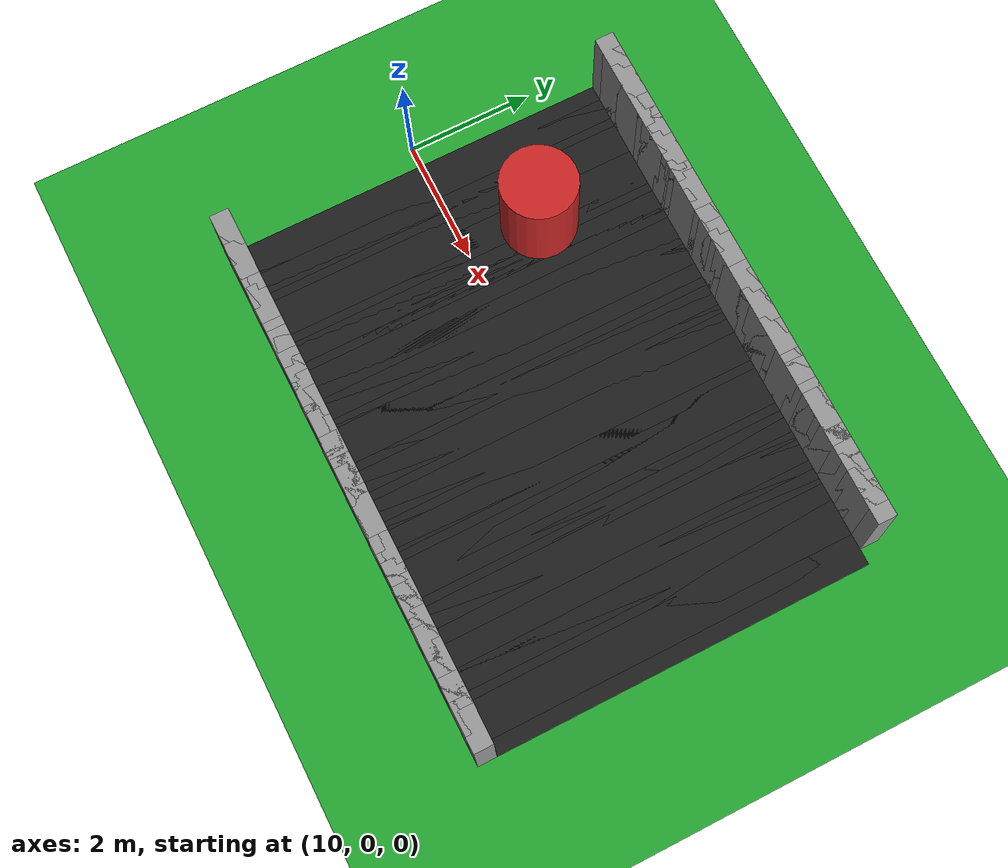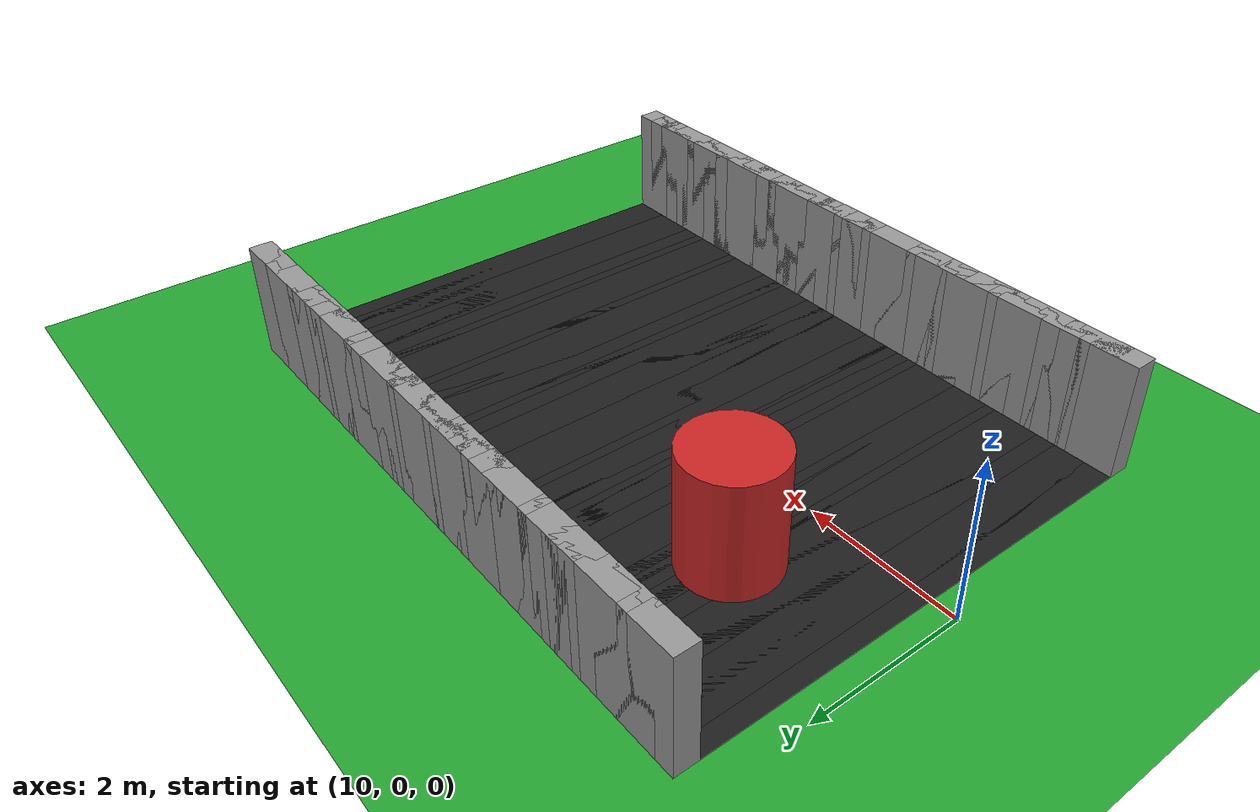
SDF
<sdf version="1.6">
 <world name="obstacle_asymturn">
  <include><uri>model://sun</uri></include>
  <model name="ground_plane">
   <static>true</static>
   <link name="link">
    <collision name="collision">
     <surface><friction><ode><mu>100</mu><mu2>50</mu2></ode></friction></surface>
     <geometry><plane><normal>0 0 1</normal><size>120 120</size></plane></geometry>
    </collision>
    <visual name="visual">
     <geometry><plane><normal>0 0 1</normal><size>120 120</size></plane></geometry>
     <material>
      <script><uri>file://media/materials/scripts/gazebo.material</uri><name>Gazebo/Green</name></script>
     </material>
    </visual>
   </link>
  </model>
  <model name="asphalt_42">
   <static>true</static>
   <pose>10.625 0.000 0.005 0 0 0.00000</pose>
   <link name="link">
    <visual name="visual">
     <geometry><box><size>0.610 6.000 0.010</size></box></geometry>
     <material>
      <script><uri>file://media/materials/scripts/gazebo.material</uri><name>Gazebo/Black</name></script>
     </material>
    </visual>
   </link>
  </model>
  <model name="curbL_42">
   <static>true</static>
   <pose>10.625 3.150 0.750 0 0 0.00000</pose>
   <link name="link">
    <collision name="collision"><geometry><box><size>0.610 0.300 1.500</size></box></geometry></collision>
    <visual name="visual">
     <geometry><box><size>0.610 0.300 1.500</size></box></geometry>
     <material>
      <script><uri>file://media/materials/scripts/gazebo.material</uri><name>Gazebo/Grey</name></script>
     </material>
    </visual>
   </link>
  </model>
  <model name="curbR_42">
   <static>true</static>
   <pose>10.625 -3.150 0.750 0 0 0.00000</pose>
   <link name="link">
    <collision name="collision"><geometry><box><size>0.610 0.300 1.500</size></box></geometry></collision>
    <visual name="visual">
     <geometry><box><size>0.610 0.300 1.500</size></box></geometry>
     <material>
      <script><uri>file://media/materials/scripts/gazebo.material</uri><name>Gazebo/Grey</name></script>
     </material>
    </visual>
   </link>
  </model>
  <model name="asphalt_43">
   <static>true</static>
   <pose>10.875 0.000 0.005 0 0 0.00000</pose>
   <link name="link">
    <visual name="visual">
     <geometry><box><size>0.610 6.000 0.010</size></box></geometry>
     <material>
      <script><uri>file://media/materials/scripts/gazebo.material</uri><name>Gazebo/Black</name></script>
     </material>
    </visual>
   </link>
  </model>
  <model name="curbL_43">
   <static>true</static>
   <pose>10.875 3.150 0.750 0 0 0.00000</pose>
   <link name="link">
    <collision name="collision"><geometry><box><size>0.610 0.300 1.500</size></box></geometry></collision>
    <visual name="visual">
     <geometry><box><size>0.610 0.300 1.500</size></box></geometry>
     <material>
      <script><uri>file://media/materials/scripts/gazebo.material</uri><name>Gazebo/Grey</name></script>
     </material>
    </visual>
   </link>
  </model>
  <model name="curbR_43">
   <static>true</static>
   <pose>10.875 -3.150 0.750 0 0 0.00000</pose>
   <link name="link">
    <collision name="collision"><geometry><box><size>0.610 0.300 1.500</size></box></geometry></collision>
    <visual name="visual">
     <geometry><box><size>0.610 0.300 1.500</size></box></geometry>
     <material>
      <script><uri>file://media/materials/scripts/gazebo.material</uri><name>Gazebo/Grey</name></script>
     </material>
    </visual>
   </link>
  </model>
  <model name="asphalt_44">
   <static>true</static>
   <pose>11.125 0.000 0.005 0 0 0.00000</pose>
   <link name="link">
    <visual name="visual">
     <geometry><box><size>0.610 6.000 0.010</size></box></geometry>
     <material>
      <script><uri>file://media/materials/scripts/gazebo.material</uri><name>Gazebo/Black</name></script>
     </material>
    </visual>
   </link>
  </model>
  <model name="curbL_44">
   <static>true</static>
   <pose>11.125 3.150 0.750 0 0 0.00000</pose>
   <link name="link">
    <collision name="collision"><geometry><box><size>0.610 0.300 1.500</size></box></geometry></collision>
    <visual name="visual">
     <geometry><box><size>0.610 0.300 1.500</size></box></geometry>
     <material>
      <script><uri>file://media/materials/scripts/gazebo.material</uri><name>Gazebo/Grey</name></script>
     </material>
    </visual>
   </link>
  </model>
  <model name="curbR_44">
   <static>true</static>
   <pose>11.125 -3.150 0.750 0 0 0.00000</pose>
   <link name="link">
    <collision name="collision"><geometry><box><size>0.610 0.300 1.500</size></box></geometry></collision>
    <visual name="visual">
     <geometry><box><size>0.610 0.300 1.500</size></box></geometry>
     <material>
      <script><uri>file://media/materials/scripts/gazebo.material</uri><name>Gazebo/Grey</name></script>
     </material>
    </visual>
   </link>
  </model>
  <model name="asphalt_45">
   <static>true</static>
   <pose>11.375 0.000 0.005 0 0 0.00000</pose>
   <link name="link">
    <visual name="visual">
     <geometry><box><size>0.610 6.000 0.010</size></box></geometry>
     <material>
      <script><uri>file://media/materials/scripts/gazebo.material</uri><name>Gazebo/Black</name></script>
     </material>
    </visual>
   </link>
  </model>
  <model name="curbL_45">
   <static>true</static>
   <pose>11.375 3.150 0.750 0 0 0.00000</pose>
   <link name="link">
    <collision name="collision"><geometry><box><size>0.610 0.300 1.500</size></box></geometry></collision>
    <visual name="visual">
     <geometry><box><size>0.610 0.300 1.500</size></box></geometry>
     <material>
      <script><uri>file://media/materials/scripts/gazebo.material</uri><name>Gazebo/Grey</name></script>
     </material>
    </visual>
   </link>
  </model>
  <model name="curbR_45">
   <static>true</static>
   <pose>11.375 -3.150 0.750 0 0 0.00000</pose>
   <link name="link">
    <collision name="collision"><geometry><box><size>0.610 0.300 1.500</size></box></geometry></collision>
    <visual name="visual">
     <geometry><box><size>0.610 0.300 1.500</size></box></geometry>
     <material>
      <script><uri>file://media/materials/scripts/gazebo.material</uri><name>Gazebo/Grey</name></script>
     </material>
    </visual>
   </link>
  </model>
  <model name="asphalt_46">
   <static>true</static>
   <pose>11.625 0.000 0.005 0 0 0.00000</pose>
   <link name="link">
    <visual name="visual">
     <geometry><box><size>0.610 6.000 0.010</size></box></geometry>
     <material>
      <script><uri>file://media/materials/scripts/gazebo.material</uri><name>Gazebo/Black</name></script>
     </material>
    </visual>
   </link>
  </model>
  <model name="curbL_46">
   <static>true</static>
   <pose>11.625 3.150 0.750 0 0 0.00000</pose>
   <link name="link">
    <collision name="collision"><geometry><box><size>0.610 0.300 1.500</size></box></geometry></collision>
    <visual name="visual">
     <geometry><box><size>0.610 0.300 1.500</size></box></geometry>
     <material>
      <script><uri>file://media/materials/scripts/gazebo.material</uri><name>Gazebo/Grey</name></script>
     </material>
    </visual>
   </link>
  </model>
  <model name="curbR_46">
   <static>true</static>
   <pose>11.625 -3.150 0.750 0 0 0.00000</pose>
   <link name="link">
    <collision name="collision"><geometry><box><size>0.610 0.300 1.500</size></box></geometry></collision>
    <visual name="visual">
     <geometry><box><size>0.610 0.300 1.500</size></box></geometry>
     <material>
      <script><uri>file://media/materials/scripts/gazebo.material</uri><name>Gazebo/Grey</name></script>
     </material>
    </visual>
   </link>
  </model>
  <model name="asphalt_47">
   <static>true</static>
   <pose>11.875 0.000 0.005 0 0 0.00000</pose>
   <link name="link">
    <visual name="visual">
     <geometry><box><size>0.610 6.000 0.010</size></box></geometry>
     <material>
      <script><uri>file://media/materials/scripts/gazebo.material</uri><name>Gazebo/Black</name></script>
     </material>
    </visual>
   </link>
  </model>
  <model name="curbL_47">
   <static>true</static>
   <pose>11.875 3.150 0.750 0 0 0.00000</pose>
   <link name="link">
    <collision name="collision"><geometry><box><size>0.610 0.300 1.500</size></box></geometry></collision>
    <visual name="visual">
     <geometry><box><size>0.610 0.300 1.500</size></box></geometry>
     <material>
      <script><uri>file://media/materials/scripts/gazebo.material</uri><name>Gazebo/Grey</name></script>
     </material>
    </visual>
   </link>
  </model>
  <model name="curbR_47">
   <static>true</static>
   <pose>11.875 -3.150 0.750 0 0 0.00000</pose>
   <link name="link">
    <collision name="collision"><geometry><box><size>0.610 0.300 1.500</size></box></geometry></collision>
    <visual name="visual">
     <geometry><box><size>0.610 0.300 1.500</size></box></geometry>
     <material>
      <script><uri>file://media/materials/scripts/gazebo.material</uri><name>Gazebo/Grey</name></script>
     </material>
    </visual>
   </link>
  </model>
  <model name="asphalt_48">
   <static>true</static>
   <pose>12.125 0.000 0.005 0 0 0.00000</pose>
   <link name="link">
    <visual name="visual">
     <geometry><box><size>0.610 6.000 0.010</size></box></geometry>
     <material>
      <script><uri>file://media/materials/scripts/gazebo.material</uri><name>Gazebo/Black</name></script>
     </material>
    </visual>
   </link>
  </model>
  <model name="curbL_48">
   <static>true</static>
   <pose>12.125 3.150 0.750 0 0 0.00000</pose>
   <link name="link">
    <collision name="collision"><geometry><box><size>0.610 0.300 1.500</size></box></geometry></collision>
    <visual name="visual">
     <geometry><box><size>0.610 0.300 1.500</size></box></geometry>
     <material>
      <script><uri>file://media/materials/scripts/gazebo.material</uri><name>Gazebo/Grey</name></script>
     </material>
    </visual>
   </link>
  </model>
  <model name="curbR_48">
   <static>true</static>
   <pose>12.125 -3.150 0.750 0 0 0.00000</pose>
   <link name="link">
    <collision name="collision"><geometry><box><size>0.610 0.300 1.500</size></box></geometry></collision>
    <visual name="visual">
     <geometry><box><size>0.610 0.300 1.500</size></box></geometry>
     <material>
      <script><uri>file://media/materials/scripts/gazebo.material</uri><name>Gazebo/Grey</name></script>
     </material>
    </visual>
   </link>
  </model>
  <model name="asphalt_49">
   <static>true</static>
   <pose>12.375 0.000 0.005 0 0 0.00000</pose>
   <link name="link">
    <visual name="visual">
     <geometry><box><size>0.610 6.000 0.010</size></box></geometry>
     <material>
      <script><uri>file://media/materials/scripts/gazebo.material</uri><name>Gazebo/Black</name></script>
     </material>
    </visual>
   </link>
  </model>
  <model name="curbL_49">
   <static>true</static>
   <pose>12.375 3.150 0.750 0 0 0.00000</pose>
   <link name="link">
    <collision name="collision"><geometry><box><size>0.610 0.300 1.500</size></box></geometry></collision>
    <visual name="visual">
     <geometry><box><size>0.610 0.300 1.500</size></box></geometry>
     <material>
      <script><uri>file://media/materials/scripts/gazebo.material</uri><name>Gazebo/Grey</name></script>
     </material>
    </visual>
   </link>
  </model>
  <model name="curbR_49">
   <static>true</static>
   <pose>12.375 -3.150 0.750 0 0 0.00000</pose>
   <link name="link">
    <collision name="collision"><geometry><box><size>0.610 0.300 1.500</size></box></geometry></collision>
    <visual name="visual">
     <geometry><box><size>0.610 0.300 1.500</size></box></geometry>
     <material>
      <script><uri>file://media/materials/scripts/gazebo.material</uri><name>Gazebo/Grey</name></script>
     </material>
    </visual>
   </link>
  </model>
  <model name="asphalt_50">
   <static>true</static>
   <pose>12.625 0.000 0.005 0 0 0.00000</pose>
   <link name="link">
    <visual name="visual">
     <geometry><box><size>0.610 6.000 0.010</size></box></geometry>
     <material>
      <script><uri>file://media/materials/scripts/gazebo.material</uri><name>Gazebo/Black</name></script>
     </material>
    </visual>
   </link>
  </model>
  <model name="curbL_50">
   <static>true</static>
   <pose>12.625 3.150 0.750 0 0 0.00000</pose>
   <link name="link">
    <collision name="collision"><geometry><box><size>0.610 0.300 1.500</size></box></geometry></collision>
    <visual name="visual">
     <geometry><box><size>0.610 0.300 1.500</size></box></geometry>
     <material>
      <script><uri>file://media/materials/scripts/gazebo.material</uri><name>Gazebo/Grey</name></script>
     </material>
    </visual>
   </link>
  </model>
  <model name="curbR_50">
   <static>true</static>
   <pose>12.625 -3.150 0.750 0 0 0.00000</pose>
   <link name="link">
    <collision name="collision"><geometry><box><size>0.610 0.300 1.500</size></box></geometry></collision>
    <visual name="visual">
     <geometry><box><size>0.610 0.300 1.500</size></box></geometry>
     <material>
      <script><uri>file://media/materials/scripts/gazebo.material</uri><name>Gazebo/Grey</name></script>
     </material>
    </visual>
   </link>
  </model>
  <model name="asphalt_51">
   <static>true</static>
   <pose>12.875 0.000 0.005 0 0 0.00000</pose>
   <link name="link">
    <visual name="visual">
     <geometry><box><size>0.610 6.000 0.010</size></box></geometry>
     <material>
      <script><uri>file://media/materials/scripts/gazebo.material</uri><name>Gazebo/Black</name></script>
     </material>
    </visual>
   </link>
  </model>
  <model name="curbL_51">
   <static>true</static>
   <pose>12.875 3.150 0.750 0 0 0.00000</pose>
   <link name="link">
    <collision name="collision"><geometry><box><size>0.610 0.300 1.500</size></box></geometry></collision>
    <visual name="visual">
     <geometry><box><size>0.610 0.300 1.500</size></box></geometry>
     <material>
      <script><uri>file://media/materials/scripts/gazebo.material</uri><name>Gazebo/Grey</name></script>
     </material>
    </visual>
   </link>
  </model>
  <model name="curbR_51">
   <static>true</static>
   <pose>12.875 -3.150 0.750 0 0 0.00000</pose>
   <link name="link">
    <collision name="collision"><geometry><box><size>0.610 0.300 1.500</size></box></geometry></collision>
    <visual name="visual">
     <geometry><box><size>0.610 0.300 1.500</size></box></geometry>
     <material>
      <script><uri>file://media/materials/scripts/gazebo.material</uri><name>Gazebo/Grey</name></script>
     </material>
    </visual>
   </link>
  </model>
  <model name="asphalt_52">
   <static>true</static>
   <pose>13.125 0.000 0.005 0 0 0.00000</pose>
   <link name="link">
    <visual name="visual">
     <geometry><box><size>0.610 6.000 0.010</size></box></geometry>
     <material>
      <script><uri>file://media/materials/scripts/gazebo.material</uri><name>Gazebo/Black</name></script>
     </material>
    </visual>
   </link>
  </model>
  <model name="curbL_52">
   <static>true</static>
   <pose>13.125 3.150 0.750 0 0 0.00000</pose>
   <link name="link">
    <collision name="collision"><geometry><box><size>0.610 0.300 1.500</size></box></geometry></collision>
    <visual name="visual">
     <geometry><box><size>0.610 0.300 1.500</size></box></geometry>
     <material>
      <script><uri>file://media/materials/scripts/gazebo.material</uri><name>Gazebo/Grey</name></script>
     </material>
    </visual>
   </link>
  </model>
  <model name="curbR_52">
   <static>true</static>
   <pose>13.125 -3.150 0.750 0 0 0.00000</pose>
   <link name="link">
    <collision name="collision"><geometry><box><size>0.610 0.300 1.500</size></box></geometry></collision>
    <visual name="visual">
     <geometry><box><size>0.610 0.300 1.500</size></box></geometry>
     <material>
      <script><uri>file://media/materials/scripts/gazebo.material</uri><name>Gazebo/Grey</name></script>
     </material>
    </visual>
   </link>
  </model>
  <model name="asphalt_53">
   <static>true</static>
   <pose>13.375 0.000 0.005 0 0 0.00000</pose>
   <link name="link">
    <visual name="visual">
     <geometry><box><size>0.610 6.000 0.010</size></box></geometry>
     <material>
      <script><uri>file://media/materials/scripts/gazebo.material</uri><name>Gazebo/Black</name></script>
     </material>
    </visual>
   </link>
  </model>
  <model name="curbL_53">
   <static>true</static>
   <pose>13.375 3.150 0.750 0 0 0.00000</pose>
   <link name="link">
    <collision name="collision"><geometry><box><size>0.610 0.300 1.500</size></box></geometry></collision>
    <visual name="visual">
     <geometry><box><size>0.610 0.300 1.500</size></box></geometry>
     <material>
      <script><uri>file://media/materials/scripts/gazebo.material</uri><name>Gazebo/Grey</name></script>
     </material>
    </visual>
   </link>
  </model>
  <model name="curbR_53">
   <static>true</static>
   <pose>13.375 -3.150 0.750 0 0 0.00000</pose>
   <link name="link">
    <collision name="collision"><geometry><box><size>0.610 0.300 1.500</size></box></geometry></collision>
    <visual name="visual">
     <geometry><box><size>0.610 0.300 1.500</size></box></geometry>
     <material>
      <script><uri>file://media/materials/scripts/gazebo.material</uri><name>Gazebo/Grey</name></script>
     </material>
    </visual>
   </link>
  </model>
  <model name="asphalt_54">
   <static>true</static>
   <pose>13.625 0.000 0.005 0 0 0.00000</pose>
   <link name="link">
    <visual name="visual">
     <geometry><box><size>0.610 6.000 0.010</size></box></geometry>
     <material>
      <script><uri>file://media/materials/scripts/gazebo.material</uri><name>Gazebo/Black</name></script>
     </material>
    </visual>
   </link>
  </model>
  <model name="curbL_54">
   <static>true</static>
   <pose>13.625 3.150 0.750 0 0 0.00000</pose>
   <link name="link">
    <collision name="collision"><geometry><box><size>0.610 0.300 1.500</size></box></geometry></collision>
    <visual name="visual">
     <geometry><box><size>0.610 0.300 1.500</size></box></geometry>
     <material>
      <script><uri>file://media/materials/scripts/gazebo.material</uri><name>Gazebo/Grey</name></script>
     </material>
    </visual>
   </link>
  </model>
  <model name="curbR_54">
   <static>true</static>
   <pose>13.625 -3.150 0.750 0 0 0.00000</pose>
   <link name="link">
    <collision name="collision"><geometry><box><size>0.610 0.300 1.500</size></box></geometry></collision>
    <visual name="visual">
     <geometry><box><size>0.610 0.300 1.500</size></box></geometry>
     <material>
      <script><uri>file://media/materials/scripts/gazebo.material</uri><name>Gazebo/Grey</name></script>
     </material>
    </visual>
   </link>
  </model>
  <model name="asphalt_55">
   <static>true</static>
   <pose>13.875 0.000 0.005 0 0 0.00000</pose>
   <link name="link">
    <visual name="visual">
     <geometry><box><size>0.610 6.000 0.010</size></box></geometry>
     <material>
      <script><uri>file://media/materials/scripts/gazebo.material</uri><name>Gazebo/Black</name></script>
     </material>
    </visual>
   </link>
  </model>
  <model name="curbL_55">
   <static>true</static>
   <pose>13.875 3.150 0.750 0 0 0.00000</pose>
   <link name="link">
    <collision name="collision"><geometry><box><size>0.610 0.300 1.500</size></box></geometry></collision>
    <visual name="visual">
     <geometry><box><size>0.610 0.300 1.500</size></box></geometry>
     <material>
      <script><uri>file://media/materials/scripts/gazebo.material</uri><name>Gazebo/Grey</name></script>
     </material>
    </visual>
   </link>
  </model>
  <model name="curbR_55">
   <static>true</static>
   <pose>13.875 -3.150 0.750 0 0 0.00000</pose>
   <link name="link">
    <collision name="collision"><geometry><box><size>0.610 0.300 1.500</size></box></geometry></collision>
    <visual name="visual">
     <geometry><box><size>0.610 0.300 1.500</size></box></geometry>
     <material>
      <script><uri>file://media/materials/scripts/gazebo.material</uri><name>Gazebo/Grey</name></script>
     </material>
    </visual>
   </link>
  </model>
  <model name="asphalt_56">
   <static>true</static>
   <pose>14.125 0.000 0.005 0 0 0.00000</pose>
   <link name="link">
    <visual name="visual">
     <geometry><box><size>0.610 6.000 0.010</size></box></geometry>
     <material>
      <script><uri>file://media/materials/scripts/gazebo.material</uri><name>Gazebo/Black</name></script>
     </material>
    </visual>
   </link>
  </model>
  <model name="curbL_56">
   <static>true</static>
   <pose>14.125 3.150 0.750 0 0 0.00000</pose>
   <link name="link">
    <collision name="collision"><geometry><box><size>0.610 0.300 1.500</size></box></geometry></collision>
    <visual name="visual">
     <geometry><box><size>0.610 0.300 1.500</size></box></geometry>
     <material>
      <script><uri>file://media/materials/scripts/gazebo.material</uri><name>Gazebo/Grey</name></script>
     </material>
    </visual>
   </link>
  </model>
  <model name="curbR_56">
   <static>true</static>
   <pose>14.125 -3.150 0.750 0 0 0.00000</pose>
   <link name="link">
    <collision name="collision"><geometry><box><size>0.610 0.300 1.500</size></box></geometry></collision>
    <visual name="visual">
     <geometry><box><size>0.610 0.300 1.500</size></box></geometry>
     <material>
      <script><uri>file://media/materials/scripts/gazebo.material</uri><name>Gazebo/Grey</name></script>
     </material>
    </visual>
   </link>
  </model>
  <model name="asphalt_57">
   <static>true</static>
   <pose>14.375 0.000 0.005 0 0 0.00000</pose>
   <link name="link">
    <visual name="visual">
     <geometry><box><size>0.610 6.000 0.010</size></box></geometry>
     <material>
      <script><uri>file://media/materials/scripts/gazebo.material</uri><name>Gazebo/Black</name></script>
     </material>
    </visual>
   </link>
  </model>
  <model name="curbL_57">
   <static>true</static>
   <pose>14.375 3.150 0.750 0 0 0.00000</pose>
   <link name="link">
    <collision name="collision"><geometry><box><size>0.610 0.300 1.500</size></box></geometry></collision>
    <visual name="visual">
     <geometry><box><size>0.610 0.300 1.500</size></box></geometry>
     <material>
      <script><uri>file://media/materials/scripts/gazebo.material</uri><name>Gazebo/Grey</name></script>
     </material>
    </visual>
   </link>
  </model>
  <model name="curbR_57">
   <static>true</static>
   <pose>14.375 -3.150 0.750 0 0 0.00000</pose>
   <link name="link">
    <collision name="collision"><geometry><box><size>0.610 0.300 1.500</size></box></geometry></collision>
    <visual name="visual">
     <geometry><box><size>0.610 0.300 1.500</size></box></geometry>
     <material>
      <script><uri>file://media/materials/scripts/gazebo.material</uri><name>Gazebo/Grey</name></script>
     </material>
    </visual>
   </link>
  </model>
  <model name="asphalt_58">
   <static>true</static>
   <pose>14.625 0.000 0.005 0 0 0.00000</pose>
   <link name="link">
    <visual name="visual">
     <geometry><box><size>0.610 6.000 0.010</size></box></geometry>
     <material>
      <script><uri>file://media/materials/scripts/gazebo.material</uri><name>Gazebo/Black</name></script>
     </material>
    </visual>
   </link>
  </model>
  <model name="curbL_58">
   <static>true</static>
   <pose>14.625 3.150 0.750 0 0 0.00000</pose>
   <link name="link">
    <collision name="collision"><geometry><box><size>0.610 0.300 1.500</size></box></geometry></collision>
    <visual name="visual">
     <geometry><box><size>0.610 0.300 1.500</size></box></geometry>
     <material>
      <script><uri>file://media/materials/scripts/gazebo.material</uri><name>Gazebo/Grey</name></script>
     </material>
    </visual>
   </link>
  </model>
  <model name="curbR_58">
   <static>true</static>
   <pose>14.625 -3.150 0.750 0 0 0.00000</pose>
   <link name="link">
    <collision name="collision"><geometry><box><size>0.610 0.300 1.500</size></box></geometry></collision>
    <visual name="visual">
     <geometry><box><size>0.610 0.300 1.500</size></box></geometry>
     <material>
      <script><uri>file://media/materials/scripts/gazebo.material</uri><name>Gazebo/Grey</name></script>
     </material>
    </visual>
   </link>
  </model>
  <model name="asphalt_59">
   <static>true</static>
   <pose>14.875 0.000 0.005 0 0 0.00000</pose>
   <link name="link">
    <visual name="visual">
     <geometry><box><size>0.610 6.000 0.010</size></box></geometry>
     <material>
      <script><uri>file://media/materials/scripts/gazebo.material</uri><name>Gazebo/Black</name></script>
     </material>
    </visual>
   </link>
  </model>
  <model name="curbL_59">
   <static>true</static>
   <pose>14.875 3.150 0.750 0 0 0.00000</pose>
   <link name="link">
    <collision name="collision"><geometry><box><size>0.610 0.300 1.500</size></box></geometry></collision>
    <visual name="visual">
     <geometry><box><size>0.610 0.300 1.500</size></box></geometry>
     <material>
      <script><uri>file://media/materials/scripts/gazebo.material</uri><name>Gazebo/Grey</name></script>
     </material>
    </visual>
   </link>
  </model>
  <model name="curbR_59">
   <static>true</static>
   <pose>14.875 -3.150 0.750 0 0 0.00000</pose>
   <link name="link">
    <collision name="collision"><geometry><box><size>0.610 0.300 1.500</size></box></geometry></collision>
    <visual name="visual">
     <geometry><box><size>0.610 0.300 1.500</size></box></geometry>
     <material>
      <script><uri>file://media/materials/scripts/gazebo.material</uri><name>Gazebo/Grey</name></script>
     </material>
    </visual>
   </link>
  </model>
  <model name="asphalt_60">
   <static>true</static>
   <pose>15.125 0.000 0.005 0 0 0.00000</pose>
   <link name="link">
    <visual name="visual">
     <geometry><box><size>0.610 6.000 0.010</size></box></geometry>
     <material>
      <script><uri>file://media/materials/scripts/gazebo.material</uri><name>Gazebo/Black</name></script>
     </material>
    </visual>
   </link>
  </model>
  <model name="curbL_60">
   <static>true</static>
   <pose>15.125 3.150 0.750 0 0 0.00000</pose>
   <link name="link">
    <collision name="collision"><geometry><box><size>0.610 0.300 1.500</size></box></geometry></collision>
    <visual name="visual">
     <geometry><box><size>0.610 0.300 1.500</size></box></geometry>
     <material>
      <script><uri>file://media/materials/scripts/gazebo.material</uri><name>Gazebo/Grey</name></script>
     </material>
    </visual>
   </link>
  </model>
  <model name="curbR_60">
   <static>true</static>
   <pose>15.125 -3.150 0.750 0 0 0.00000</pose>
   <link name="link">
    <collision name="collision"><geometry><box><size>0.610 0.300 1.500</size></box></geometry></collision>
    <visual name="visual">
     <geometry><box><size>0.610 0.300 1.500</size></box></geometry>
     <material>
      <script><uri>file://media/materials/scripts/gazebo.material</uri><name>Gazebo/Grey</name></script>
     </material>
    </visual>
   </link>
  </model>
  <model name="asphalt_61">
   <static>true</static>
   <pose>15.375 0.000 0.005 0 0 0.00000</pose>
   <link name="link">
    <visual name="visual">
     <geometry><box><size>0.610 6.000 0.010</size></box></geometry>
     <material>
      <script><uri>file://media/materials/scripts/gazebo.material</uri><name>Gazebo/Black</name></script>
     </material>
    </visual>
   </link>
  </model>
  <model name="curbL_61">
   <static>true</static>
   <pose>15.375 3.150 0.750 0 0 0.00000</pose>
   <link name="link">
    <collision name="collision"><geometry><box><size>0.610 0.300 1.500</size></box></geometry></collision>
    <visual name="visual">
     <geometry><box><size>0.610 0.300 1.500</size></box></geometry>
     <material>
      <script><uri>file://media/materials/scripts/gazebo.material</uri><name>Gazebo/Grey</name></script>
     </material>
    </visual>
   </link>
  </model>
  <model name="curbR_61">
   <static>true</static>
   <pose>15.375 -3.150 0.750 0 0 0.00000</pose>
   <link name="link">
    <collision name="collision"><geometry><box><size>0.610 0.300 1.500</size></box></geometry></collision>
    <visual name="visual">
     <geometry><box><size>0.610 0.300 1.500</size></box></geometry>
     <material>
      <script><uri>file://media/materials/scripts/gazebo.material</uri><name>Gazebo/Grey</name></script>
     </material>
    </visual>
   </link>
  </model>
  <model name="asphalt_62">
   <static>true</static>
   <pose>15.625 0.000 0.005 0 0 0.00000</pose>
   <link name="link">
    <visual name="visual">
     <geometry><box><size>0.610 6.000 0.010</size></box></geometry>
     <material>
      <script><uri>file://media/materials/scripts/gazebo.material</uri><name>Gazebo/Black</name></script>
     </material>
    </visual>
   </link>
  </model>
  <model name="curbL_62">
   <static>true</static>
   <pose>15.625 3.150 0.750 0 0 0.00000</pose>
   <link name="link">
    <collision name="collision"><geometry><box><size>0.610 0.300 1.500</size></box></geometry></collision>
    <visual name="visual">
     <geometry><box><size>0.610 0.300 1.500</size></box></geometry>
     <material>
      <script><uri>file://media/materials/scripts/gazebo.material</uri><name>Gazebo/Grey</name></script>
     </material>
    </visual>
   </link>
  </model>
  <model name="curbR_62">
   <static>true</static>
   <pose>15.625 -3.150 0.750 0 0 0.00000</pose>
   <link name="link">
    <collision name="collision"><geometry><box><size>0.610 0.300 1.500</size></box></geometry></collision>
    <visual name="visual">
     <geometry><box><size>0.610 0.300 1.500</size></box></geometry>
     <material>
      <script><uri>file://media/materials/scripts/gazebo.material</uri><name>Gazebo/Grey</name></script>
     </material>
    </visual>
   </link>
  </model>
  <model name="asphalt_63">
   <static>true</static>
   <pose>15.875 0.000 0.005 0 0 0.00000</pose>
   <link name="link">
    <visual name="visual">
     <geometry><box><size>0.610 6.000 0.010</size></box></geometry>
     <material>
      <script><uri>file://media/materials/scripts/gazebo.material</uri><name>Gazebo/Black</name></script>
     </material>
    </visual>
   </link>
  </model>
  <model name="curbL_63">
   <static>true</static>
   <pose>15.875 3.150 0.750 0 0 0.00000</pose>
   <link name="link">
    <collision name="collision"><geometry><box><size>0.610 0.300 1.500</size></box></geometry></collision>
    <visual name="visual">
     <geometry><box><size>0.610 0.300 1.500</size></box></geometry>
     <material>
      <script><uri>file://media/materials/scripts/gazebo.material</uri><name>Gazebo/Grey</name></script>
     </material>
    </visual>
   </link>
  </model>
  <model name="curbR_63">
   <static>true</static>
   <pose>15.875 -3.150 0.750 0 0 0.00000</pose>
   <link name="link">
    <collision name="collision"><geometry><box><size>0.610 0.300 1.500</size></box></geometry></collision>
    <visual name="visual">
     <geometry><box><size>0.610 0.300 1.500</size></box></geometry>
     <material>
      <script><uri>file://media/materials/scripts/gazebo.material</uri><name>Gazebo/Grey</name></script>
     </material>
    </visual>
   </link>
  </model>
  <model name="asphalt_64">
   <static>true</static>
   <pose>16.125 0.000 0.005 0 0 0.00000</pose>
   <link name="link">
    <visual name="visual">
     <geometry><box><size>0.610 6.000 0.010</size></box></geometry>
     <material>
      <script><uri>file://media/materials/scripts/gazebo.material</uri><name>Gazebo/Black</name></script>
     </material>
    </visual>
   </link>
  </model>
  <model name="curbL_64">
   <static>true</static>
   <pose>16.125 3.150 0.750 0 0 0.00000</pose>
   <link name="link">
    <collision name="collision"><geometry><box><size>0.610 0.300 1.500</size></box></geometry></collision>
    <visual name="visual">
     <geometry><box><size>0.610 0.300 1.500</size></box></geometry>
     <material>
      <script><uri>file://media/materials/scripts/gazebo.material</uri><name>Gazebo/Grey</name></script>
     </material>
    </visual>
   </link>
  </model>
  <model name="curbR_64">
   <static>true</static>
   <pose>16.125 -3.150 0.750 0 0 0.00000</pose>
   <link name="link">
    <collision name="collision"><geometry><box><size>0.610 0.300 1.500</size></box></geometry></collision>
    <visual name="visual">
     <geometry><box><size>0.610 0.300 1.500</size></box></geometry>
     <material>
      <script><uri>file://media/materials/scripts/gazebo.material</uri><name>Gazebo/Grey</name></script>
     </material>
    </visual>
   </link>
  </model>
  <model name="asphalt_65">
   <static>true</static>
   <pose>16.375 0.000 0.005 0 0 0.00000</pose>
   <link name="link">
    <visual name="visual">
     <geometry><box><size>0.610 6.000 0.010</size></box></geometry>
     <material>
      <script><uri>file://media/materials/scripts/gazebo.material</uri><name>Gazebo/Black</name></script>
     </material>
    </visual>
   </link>
  </model>
  <model name="curbL_65">
   <static>true</static>
   <pose>16.375 3.150 0.750 0 0 0.00000</pose>
   <link name="link">
    <collision name="collision"><geometry><box><size>0.610 0.300 1.500</size></box></geometry></collision>
    <visual name="visual">
     <geometry><box><size>0.610 0.300 1.500</size></box></geometry>
     <material>
      <script><uri>file://media/materials/scripts/gazebo.material</uri><name>Gazebo/Grey</name></script>
     </material>
    </visual>
   </link>
  </model>
  <model name="curbR_65">
   <static>true</static>
   <pose>16.375 -3.150 0.750 0 0 0.00000</pose>
   <link name="link">
    <collision name="collision"><geometry><box><size>0.610 0.300 1.500</size></box></geometry></collision>
    <visual name="visual">
     <geometry><box><size>0.610 0.300 1.500</size></box></geometry>
     <material>
      <script><uri>file://media/materials/scripts/gazebo.material</uri><name>Gazebo/Grey</name></script>
     </material>
    </visual>
   </link>
  </model>
  <model name="asphalt_66">
   <static>true</static>
   <pose>16.625 0.000 0.005 0 0 0.00000</pose>
   <link name="link">
    <visual name="visual">
     <geometry><box><size>0.610 6.000 0.010</size></box></geometry>
     <material>
      <script><uri>file://media/materials/scripts/gazebo.material</uri><name>Gazebo/Black</name></script>
     </material>
    </visual>
   </link>
  </model>
  <model name="curbL_66">
   <static>true</static>
   <pose>16.625 3.150 0.750 0 0 0.00000</pose>
   <link name="link">
    <collision name="collision"><geometry><box><size>0.610 0.300 1.500</size></box></geometry></collision>
    <visual name="visual">
     <geometry><box><size>0.610 0.300 1.500</size></box></geometry>
     <material>
      <script><uri>file://media/materials/scripts/gazebo.material</uri><name>Gazebo/Grey</name></script>
     </material>
    </visual>
   </link>
  </model>
  <model name="curbR_66">
   <static>true</static>
   <pose>16.625 -3.150 0.750 0 0 0.00000</pose>
   <link name="link">
    <collision name="collision"><geometry><box><size>0.610 0.300 1.500</size></box></geometry></collision>
    <visual name="visual">
     <geometry><box><size>0.610 0.300 1.500</size></box></geometry>
     <material>
      <script><uri>file://media/materials/scripts/gazebo.material</uri><name>Gazebo/Grey</name></script>
     </material>
    </visual>
   </link>
  </model>
  <model name="asphalt_67">
   <static>true</static>
   <pose>16.875 0.000 0.005 0 0 0.00000</pose>
   <link name="link">
    <visual name="visual">
     <geometry><box><size>0.610 6.000 0.010</size></box></geometry>
     <material>
      <script><uri>file://media/materials/scripts/gazebo.material</uri><name>Gazebo/Black</name></script>
     </material>
    </visual>
   </link>
  </model>
  <model name="curbL_67">
   <static>true</static>
   <pose>16.875 3.150 0.750 0 0 0.00000</pose>
   <link name="link">
    <collision name="collision"><geometry><box><size>0.610 0.300 1.500</size></box></geometry></collision>
    <visual name="visual">
     <geometry><box><size>0.610 0.300 1.500</size></box></geometry>
     <material>
      <script><uri>file://media/materials/scripts/gazebo.material</uri><name>Gazebo/Grey</name></script>
     </material>
    </visual>
   </link>
  </model>
  <model name="curbR_67">
   <static>true</static>
   <pose>16.875 -3.150 0.750 0 0 0.00000</pose>
   <link name="link">
    <collision name="collision"><geometry><box><size>0.610 0.300 1.500</size></box></geometry></collision>
    <visual name="visual">
     <geometry><box><size>0.610 0.300 1.500</size></box></geometry>
     <material>
      <script><uri>file://media/materials/scripts/gazebo.material</uri><name>Gazebo/Grey</name></script>
     </material>
    </visual>
   </link>
  </model>
  <model name="asphalt_68">
   <static>true</static>
   <pose>17.125 0.000 0.005 0 0 0.00000</pose>
   <link name="link">
    <visual name="visual">
     <geometry><box><size>0.610 6.000 0.010</size></box></geometry>
     <material>
      <script><uri>file://media/materials/scripts/gazebo.material</uri><name>Gazebo/Black</name></script>
     </material>
    </visual>
   </link>
  </model>
  <model name="curbL_68">
   <static>true</static>
   <pose>17.125 3.150 0.750 0 0 0.00000</pose>
   <link name="link">
    <collision name="collision"><geometry><box><size>0.610 0.300 1.500</size></box></geometry></collision>
    <visual name="visual">
     <geometry><box><size>0.610 0.300 1.500</size></box></geometry>
     <material>
      <script><uri>file://media/materials/scripts/gazebo.material</uri><name>Gazebo/Grey</name></script>
     </material>
    </visual>
   </link>
  </model>
  <model name="curbR_68">
   <static>true</static>
   <pose>17.125 -3.150 0.750 0 0 0.00000</pose>
   <link name="link">
    <collision name="collision"><geometry><box><size>0.610 0.300 1.500</size></box></geometry></collision>
    <visual name="visual">
     <geometry><box><size>0.610 0.300 1.500</size></box></geometry>
     <material>
      <script><uri>file://media/materials/scripts/gazebo.material</uri><name>Gazebo/Grey</name></script>
     </material>
    </visual>
   </link>
  </model>
  <model name="asphalt_69">
   <static>true</static>
   <pose>17.375 0.000 0.005 0 0 0.00000</pose>
   <link name="link">
    <visual name="visual">
     <geometry><box><size>0.610 6.000 0.010</size></box></geometry>
     <material>
      <script><uri>file://media/materials/scripts/gazebo.material</uri><name>Gazebo/Black</name></script>
     </material>
    </visual>
   </link>
  </model>
  <model name="curbL_69">
   <static>true</static>
   <pose>17.375 3.150 0.750 0 0 0.00000</pose>
   <link name="link">
    <collision name="collision"><geometry><box><size>0.610 0.300 1.500</size></box></geometry></collision>
    <visual name="visual">
     <geometry><box><size>0.610 0.300 1.500</size></box></geometry>
     <material>
      <script><uri>file://media/materials/scripts/gazebo.material</uri><name>Gazebo/Grey</name></script>
     </material>
    </visual>
   </link>
  </model>
  <model name="curbR_69">
   <static>true</static>
   <pose>17.375 -3.150 0.750 0 0 0.00000</pose>
   <link name="link">
    <collision name="collision"><geometry><box><size>0.610 0.300 1.500</size></box></geometry></collision>
    <visual name="visual">
     <geometry><box><size>0.610 0.300 1.500</size></box></geometry>
     <material>
      <script><uri>file://media/materials/scripts/gazebo.material</uri><name>Gazebo/Grey</name></script>
     </material>
    </visual>
   </link>
  </model>
  <model name="asphalt_70">
   <static>true</static>
   <pose>17.625 0.000 0.005 0 0 0.00000</pose>
   <link name="link">
    <visual name="visual">
     <geometry><box><size>0.610 6.000 0.010</size></box></geometry>
     <material>
      <script><uri>file://media/materials/scripts/gazebo.material</uri><name>Gazebo/Black</name></script>
     </material>
    </visual>
   </link>
  </model>
  <model name="curbL_70">
   <static>true</static>
   <pose>17.625 3.150 0.750 0 0 0.00000</pose>
   <link name="link">
    <collision name="collision"><geometry><box><size>0.610 0.300 1.500</size></box></geometry></collision>
    <visual name="visual">
     <geometry><box><size>0.610 0.300 1.500</size></box></geometry>
     <material>
      <script><uri>file://media/materials/scripts/gazebo.material</uri><name>Gazebo/Grey</name></script>
     </material>
    </visual>
   </link>
  </model>
  <model name="curbR_70">
   <static>true</static>
   <pose>17.625 -3.150 0.750 0 0 0.00000</pose>
   <link name="link">
    <collision name="collision"><geometry><box><size>0.610 0.300 1.500</size></box></geometry></collision>
    <visual name="visual">
     <geometry><box><size>0.610 0.300 1.500</size></box></geometry>
     <material>
      <script><uri>file://media/materials/scripts/gazebo.material</uri><name>Gazebo/Grey</name></script>
     </material>
    </visual>
   </link>
  </model>
  <model name="asphalt_71">
   <static>true</static>
   <pose>17.875 0.000 0.005 0 0 0.00000</pose>
   <link name="link">
    <visual name="visual">
     <geometry><box><size>0.610 6.000 0.010</size></box></geometry>
     <material>
      <script><uri>file://media/materials/scripts/gazebo.material</uri><name>Gazebo/Black</name></script>
     </material>
    </visual>
   </link>
  </model>
  <model name="curbL_71">
   <static>true</static>
   <pose>17.875 3.150 0.750 0 0 0.00000</pose>
   <link name="link">
    <collision name="collision"><geometry><box><size>0.610 0.300 1.500</size></box></geometry></collision>
    <visual name="visual">
     <geometry><box><size>0.610 0.300 1.500</size></box></geometry>
     <material>
      <script><uri>file://media/materials/scripts/gazebo.material</uri><name>Gazebo/Grey</name></script>
     </material>
    </visual>
   </link>
  </model>
  <model name="curbR_71">
   <static>true</static>
   <pose>17.875 -3.150 0.750 0 0 0.00000</pose>
   <link name="link">
    <collision name="collision"><geometry><box><size>0.610 0.300 1.500</size></box></geometry></collision>
    <visual name="visual">
     <geometry><box><size>0.610 0.300 1.500</size></box></geometry>
     <material>
      <script><uri>file://media/materials/scripts/gazebo.material</uri><name>Gazebo/Grey</name></script>
     </material>
    </visual>
   </link>
  </model>
  <model name="asphalt_72">
   <static>true</static>
   <pose>18.125 0.000 0.005 0 0 0.00000</pose>
   <link name="link">
    <visual name="visual">
     <geometry><box><size>0.610 6.000 0.010</size></box></geometry>
     <material>
      <script><uri>file://media/materials/scripts/gazebo.material</uri><name>Gazebo/Black</name></script>
     </material>
    </visual>
   </link>
  </model>
  <model name="curbL_72">
   <static>true</static>
   <pose>18.125 3.150 0.750 0 0 0.00000</pose>
   <link name="link">
    <collision name="collision"><geometry><box><size>0.610 0.300 1.500</size></box></geometry></collision>
    <visual name="visual">
     <geometry><box><size>0.610 0.300 1.500</size></box></geometry>
     <material>
      <script><uri>file://media/materials/scripts/gazebo.material</uri><name>Gazebo/Grey</name></script>
     </material>
    </visual>
   </link>
  </model>
  <model name="curbR_72">
   <static>true</static>
   <pose>18.125 -3.150 0.750 0 0 0.00000</pose>
   <link name="link">
    <collision name="collision"><geometry><box><size>0.610 0.300 1.500</size></box></geometry></collision>
    <visual name="visual">
     <geometry><box><size>0.610 0.300 1.500</size></box></geometry>
     <material>
      <script><uri>file://media/materials/scripts/gazebo.material</uri><name>Gazebo/Grey</name></script>
     </material>
    </visual>
   </link>
  </model>
  <model name="asphalt_73">
   <static>true</static>
   <pose>18.375 0.000 0.005 0 0 0.00000</pose>
   <link name="link">
    <visual name="visual">
     <geometry><box><size>0.610 6.000 0.010</size></box></geometry>
     <material>
      <script><uri>file://media/materials/scripts/gazebo.material</uri><name>Gazebo/Black</name></script>
     </material>
    </visual>
   </link>
  </model>
  <model name="curbL_73">
   <static>true</static>
   <pose>18.375 3.150 0.750 0 0 0.00000</pose>
   <link name="link">
    <collision name="collision"><geometry><box><size>0.610 0.300 1.500</size></box></geometry></collision>
    <visual name="visual">
     <geometry><box><size>0.610 0.300 1.500</size></box></geometry>
     <material>
      <script><uri>file://media/materials/scripts/gazebo.material</uri><name>Gazebo/Grey</name></script>
     </material>
    </visual>
   </link>
  </model>
  <model name="curbR_73">
   <static>true</static>
   <pose>18.375 -3.150 0.750 0 0 0.00000</pose>
   <link name="link">
    <collision name="collision"><geometry><box><size>0.610 0.300 1.500</size></box></geometry></collision>
    <visual name="visual">
     <geometry><box><size>0.610 0.300 1.500</size></box></geometry>
     <material>
      <script><uri>file://media/materials/scripts/gazebo.material</uri><name>Gazebo/Grey</name></script>
     </material>
    </visual>
   </link>
  </model>
  <model name="asphalt_74">
   <static>true</static>
   <pose>18.625 0.000 0.005 0 0 0.00000</pose>
   <link name="link">
    <visual name="visual">
     <geometry><box><size>0.610 6.000 0.010</size></box></geometry>
     <material>
      <script><uri>file://media/materials/scripts/gazebo.material</uri><name>Gazebo/Black</name></script>
     </material>
    </visual>
   </link>
  </model>
  <model name="curbR_74">
   <static>true</static>
   <pose>18.625 -3.150 0.750 0 0 0.00000</pose>
   <link name="link">
    <collision name="collision"><geometry><box><size>0.610 0.300 1.500</size></box></geometry></collision>
    <visual name="visual">
     <geometry><box><size>0.610 0.300 1.500</size></box></geometry>
     <material>
      <script><uri>file://media/materials/scripts/gazebo.material</uri><name>Gazebo/Grey</name></script>
     </material>
    </visual>
   </link>
  </model>
  <model name="obs_0">
   <static>true</static>
   <pose>12.000 1.200 0.750 0 0 0</pose>
   <link name="link">
    <collision name="collision">
     <geometry><cylinder><radius>0.600</radius><length>1.500</length></cylinder></geometry>
    </collision>
    <visual name="visual">
     <geometry><cylinder><radius>0.600</radius><length>1.500</length></cylinder></geometry>
     <material>
      <script><uri>file://media/materials/scripts/gazebo.material</uri><name>Gazebo/Red</name></script>
     </material>
    </visual>
   </link>
  </model>
 </world>
</sdf>
